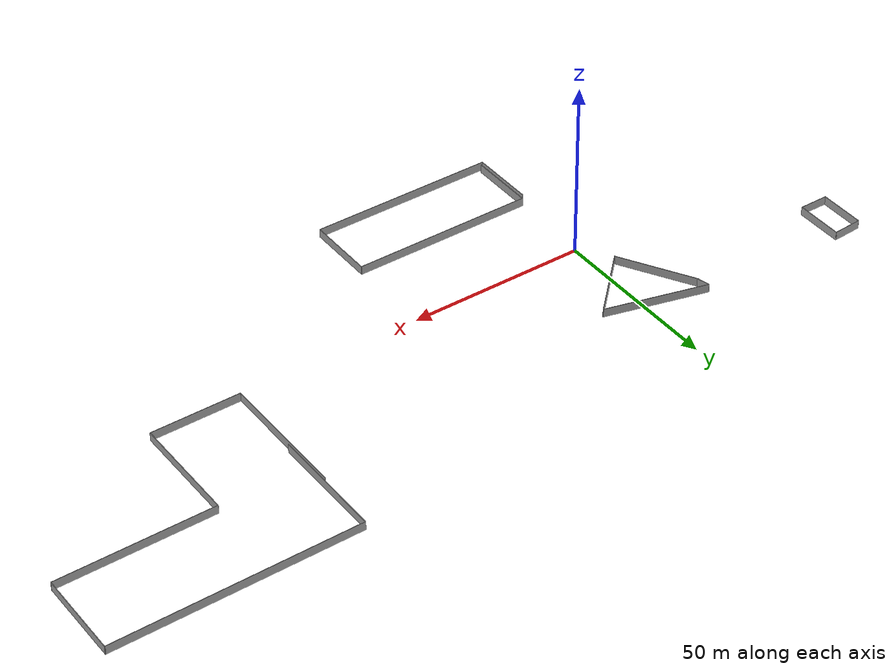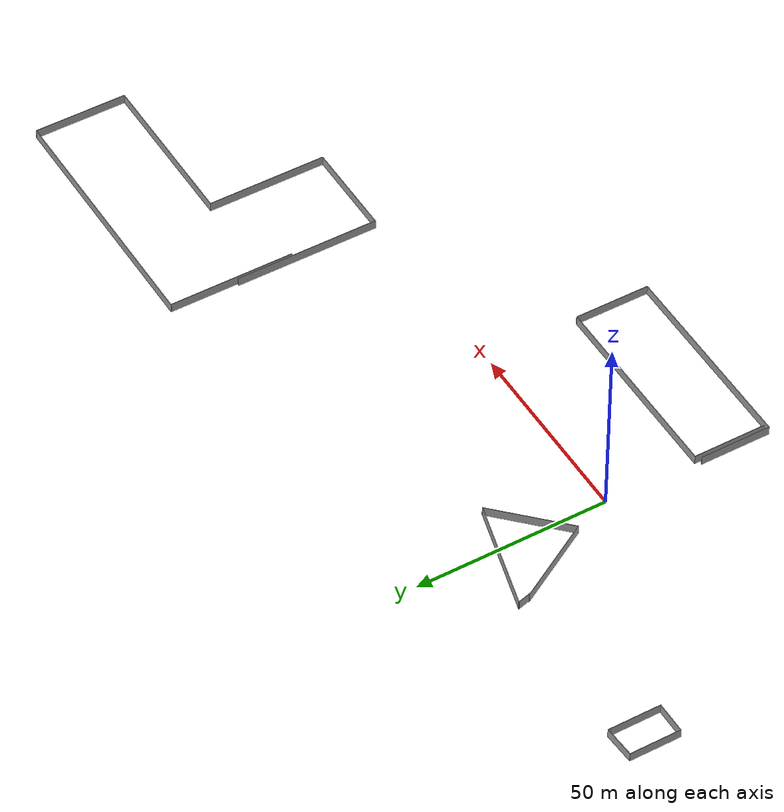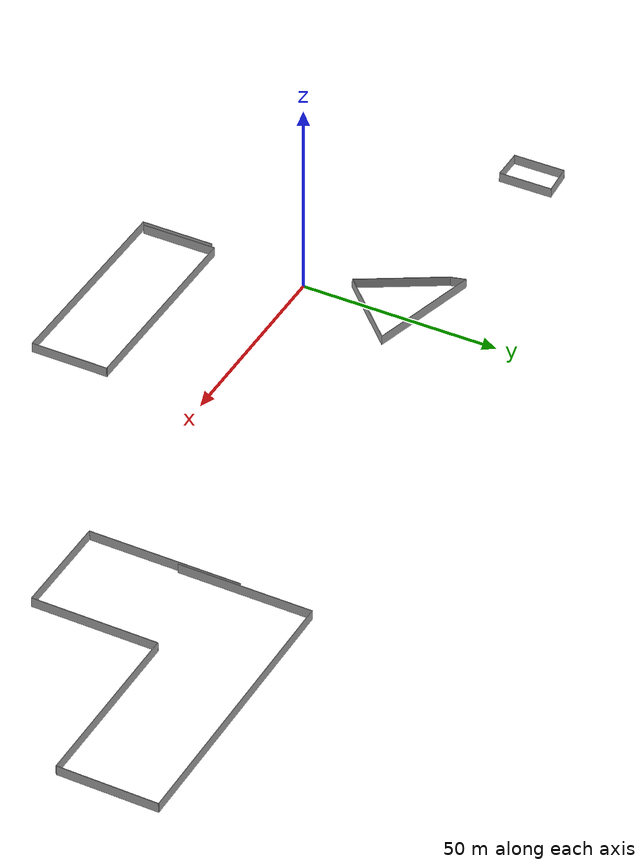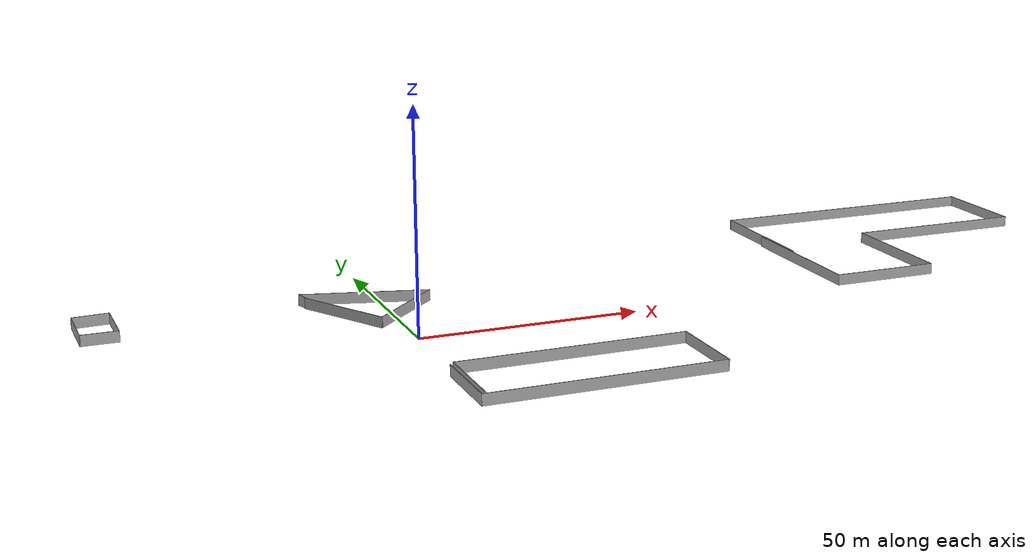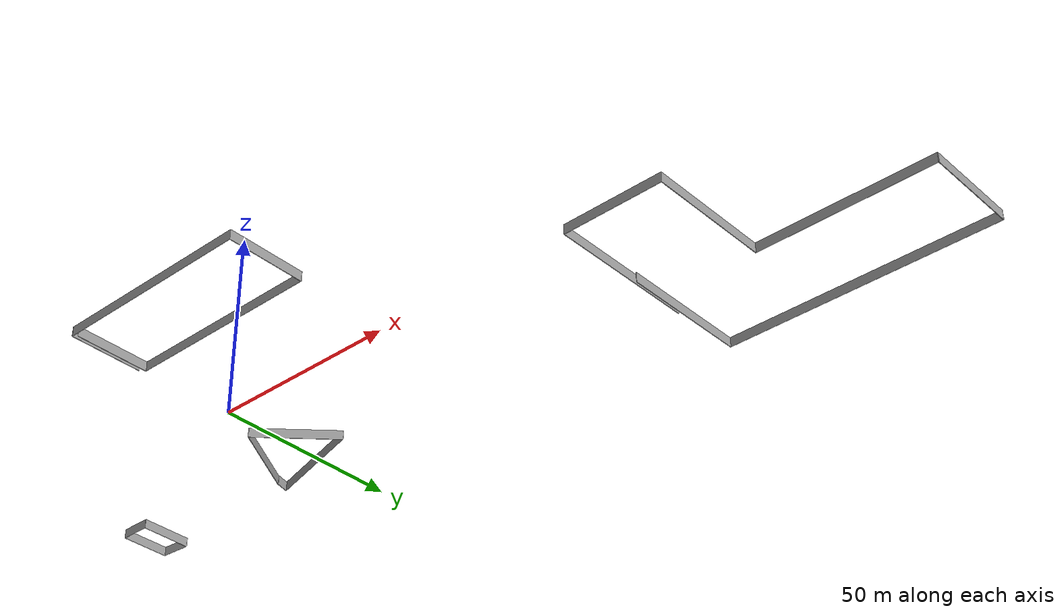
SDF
<?xml version='1.0'?>
<sdf version='1.7'>
  <model name='obstacles'>
    <pose>52.1616 6.40144 0 0 -0 0</pose>
    <link name='Wall_17'>
      <collision name='Wall_17_Collision'>
        <geometry>
          <box>
            <size>37.75 0.15 2.5</size>
          </box>
        </geometry>
        <pose>0 0 1.25 0 -0 0</pose>
      </collision>
      <visual name='Wall_17_Visual'>
        <pose>0 0 1.25 0 -0 0</pose>
        <geometry>
          <box>
            <size>37.75 0.15 2.5</size>
          </box>
        </geometry>
        <material>
          <script>
            <uri>file://media/materials/scripts/gazebo.material</uri>
            <name>Gazebo/Grey</name>
          </script>
          <ambient>1 1 1 1</ambient>
        </material>
        <meta>
          <layer>0</layer>
        </meta>
      </visual>
      <pose>49.9094 13.2584 0 0 -0 -1.5708</pose>
    </link>
    <link name='Wall_18'>
      <collision name='Wall_18_Collision'>
        <geometry>
          <box>
            <size>25.25 0.15 2.5</size>
          </box>
        </geometry>
        <pose>0 0 1.25 0 -0 0</pose>
      </collision>
      <visual name='Wall_18_Visual'>
        <pose>0 0 1.25 0 -0 0</pose>
        <geometry>
          <box>
            <size>25.25 0.15 2.5</size>
          </box>
        </geometry>
        <material>
          <script>
            <uri>file://media/materials/scripts/gazebo.material</uri>
            <name>Gazebo/Grey</name>
          </script>
          <ambient>1 1 1 1</ambient>
        </material>
        <meta>
          <layer>0</layer>
        </meta>
      </visual>
      <pose>62.4594 -5.54164 0 0 -0 0</pose>
    </link>
    <link name='Wall_19'>
      <collision name='Wall_19_Collision'>
        <geometry>
          <box>
            <size>31.25 0.15 2.5</size>
          </box>
        </geometry>
        <pose>0 0 1.25 0 -0 0</pose>
      </collision>
      <visual name='Wall_19_Visual'>
        <pose>0 0 1.25 0 -0 0</pose>
        <geometry>
          <box>
            <size>31.25 0.15 2.5</size>
          </box>
        </geometry>
        <material>
          <script>
            <uri>file://media/materials/scripts/gazebo.material</uri>
            <name>Gazebo/Grey</name>
          </script>
          <ambient>1 1 1 1</ambient>
        </material>
        <meta>
          <layer>0</layer>
        </meta>
      </visual>
      <pose>75.0094 10.0084 0 0 -0 1.5708</pose>
    </link>
    <link name='Wall_20'>
      <collision name='Wall_20_Collision'>
        <geometry>
          <box>
            <size>43.5 0.15 2.5</size>
          </box>
        </geometry>
        <pose>0 0 1.25 0 -0 0</pose>
      </collision>
      <visual name='Wall_20_Visual'>
        <pose>0 0 1.25 0 -0 0</pose>
        <geometry>
          <box>
            <size>43.5 0.15 2.5</size>
          </box>
        </geometry>
        <material>
          <script>
            <uri>file://media/materials/scripts/gazebo.material</uri>
            <name>Gazebo/Grey</name>
          </script>
          <ambient>1 1 1 1</ambient>
        </material>
        <meta>
          <layer>0</layer>
        </meta>
      </visual>
      <pose>96.6844 25.5584 0 0 -0 0</pose>
    </link>
    <link name='Wall_21'>
      <collision name='Wall_21_Collision'>
        <geometry>
          <box>
            <size>24.5 0.15 2.5</size>
          </box>
        </geometry>
        <pose>0 0 1.25 0 -0 0</pose>
      </collision>
      <visual name='Wall_21_Visual'>
        <pose>0 0 1.25 0 -0 0</pose>
        <geometry>
          <box>
            <size>24.5 0.15 2.5</size>
          </box>
        </geometry>
        <material>
          <script>
            <uri>file://media/materials/scripts/gazebo.material</uri>
            <name>Gazebo/Grey</name>
          </script>
          <ambient>1 1 1 1</ambient>
        </material>
        <meta>
          <layer>0</layer>
        </meta>
      </visual>
      <pose>118.359 37.7334 0 0 -0 1.5708</pose>
    </link>
    <link name='Wall_22'>
      <collision name='Wall_22_Collision'>
        <geometry>
          <box>
            <size>68 0.15 2.5</size>
          </box>
        </geometry>
        <pose>0 0 1.25 0 -0 0</pose>
      </collision>
      <visual name='Wall_22_Visual'>
        <pose>0 0 1.25 0 -0 0</pose>
        <geometry>
          <box>
            <size>68 0.15 2.5</size>
          </box>
        </geometry>
        <material>
          <script>
            <uri>file://media/materials/scripts/gazebo.material</uri>
            <name>Gazebo/Grey</name>
          </script>
          <ambient>1 1 1 1</ambient>
        </material>
        <meta>
          <layer>0</layer>
        </meta>
      </visual>
      <pose>84.4344 49.9084 0 0 -0 3.14159</pose>
    </link>
    <link name='Wall_23'>
      <collision name='Wall_23_Collision'>
        <geometry>
          <box>
            <size>33 0.15 2.5</size>
          </box>
        </geometry>
        <pose>0 0 1.25 0 -0 0</pose>
      </collision>
      <visual name='Wall_23_Visual'>
        <pose>0 0 1.25 0 -0 0</pose>
        <geometry>
          <box>
            <size>33 0.15 2.5</size>
          </box>
        </geometry>
        <material>
          <script>
            <uri>file://media/materials/scripts/gazebo.material</uri>
            <name>Gazebo/Grey</name>
          </script>
          <ambient>1 1 1 1</ambient>
        </material>
        <meta>
          <layer>0</layer>
        </meta>
      </visual>
      <pose>50.5094 33.4834 0 0 -0 -1.5708</pose>
    </link>
    <link name='Wall_25'>
      <collision name='Wall_25_Collision'>
        <geometry>
          <box>
            <size>18.5 0.15 2.5</size>
          </box>
        </geometry>
        <pose>0 0 1.25 0 -0 0</pose>
      </collision>
      <visual name='Wall_25_Visual'>
        <pose>0 0 1.25 0 -0 0</pose>
        <geometry>
          <box>
            <size>18.5 0.15 2.5</size>
          </box>
        </geometry>
        <material>
          <script>
            <uri>file://media/materials/scripts/gazebo.material</uri>
            <name>Gazebo/Grey</name>
          </script>
          <ambient>1 1 1 1</ambient>
        </material>
        <meta>
          <layer>0</layer>
        </meta>
      </visual>
      <pose>-53.6089 -40.7334 0 0 -0 -1.5708</pose>
    </link>
    <link name='Wall_26'>
      <collision name='Wall_26_Collision'>
        <geometry>
          <box>
            <size>52.25 0.15 2.5</size>
          </box>
        </geometry>
        <pose>0 0 1.25 0 -0 0</pose>
      </collision>
      <visual name='Wall_26_Visual'>
        <pose>0 0 1.25 0 -0 0</pose>
        <geometry>
          <box>
            <size>52.25 0.15 2.5</size>
          </box>
        </geometry>
        <material>
          <script>
            <uri>file://media/materials/scripts/gazebo.material</uri>
            <name>Gazebo/Grey</name>
          </script>
          <ambient>1 1 1 1</ambient>
        </material>
        <meta>
          <layer>0</layer>
        </meta>
      </visual>
      <pose>-27.5589 -49.9084 0 0 -0 0</pose>
    </link>
    <link name='Wall_27'>
      <collision name='Wall_27_Collision'>
        <geometry>
          <box>
            <size>19.75 0.15 2.5</size>
          </box>
        </geometry>
        <pose>0 0 1.25 0 -0 0</pose>
      </collision>
      <visual name='Wall_27_Visual'>
        <pose>0 0 1.25 0 -0 0</pose>
        <geometry>
          <box>
            <size>19.75 0.15 2.5</size>
          </box>
        </geometry>
        <material>
          <script>
            <uri>file://media/materials/scripts/gazebo.material</uri>
            <name>Gazebo/Grey</name>
          </script>
          <ambient>1 1 1 1</ambient>
        </material>
        <meta>
          <layer>0</layer>
        </meta>
      </visual>
      <pose>-1.50893 -40.1084 0 0 -0 1.5708</pose>
    </link>
    <link name='Wall_28'>
      <collision name='Wall_28_Collision'>
        <geometry>
          <box>
            <size>51.25 0.15 2.5</size>
          </box>
        </geometry>
        <pose>0 0 1.25 0 -0 0</pose>
      </collision>
      <visual name='Wall_28_Visual'>
        <pose>0 0 1.25 0 -0 0</pose>
        <geometry>
          <box>
            <size>51.25 0.15 2.5</size>
          </box>
        </geometry>
        <material>
          <script>
            <uri>file://media/materials/scripts/gazebo.material</uri>
            <name>Gazebo/Grey</name>
          </script>
          <ambient>1 1 1 1</ambient>
        </material>
        <meta>
          <layer>0</layer>
        </meta>
      </visual>
      <pose>-27.0589 -30.3084 0 0 -0 3.14159</pose>
    </link>
    <link name='Wall_29'>
      <collision name='Wall_29_Collision'>
        <geometry>
          <box>
            <size>19 0.15 2.5</size>
          </box>
        </geometry>
        <pose>0 0 1.25 0 -0 0</pose>
      </collision>
      <visual name='Wall_29_Visual'>
        <pose>0 0 1.25 0 -0 0</pose>
        <geometry>
          <box>
            <size>19 0.15 2.5</size>
          </box>
        </geometry>
        <material>
          <script>
            <uri>file://media/materials/scripts/gazebo.material</uri>
            <name>Gazebo/Grey</name>
          </script>
          <ambient>1 1 1 1</ambient>
        </material>
        <meta>
          <layer>0</layer>
        </meta>
      </visual>
      <pose>-52.6089 -39.7334 0 0 -0 -1.5708</pose>
    </link>
    <link name='Wall_31'>
      <collision name='Wall_31_Collision'>
        <geometry>
          <box>
            <size>13.25 0.15 2.5</size>
          </box>
        </geometry>
        <pose>0 0 1.25 0 -0 0</pose>
      </collision>
      <visual name='Wall_31_Visual'>
        <pose>0 0 1.25 0 -0 0</pose>
        <geometry>
          <box>
            <size>13.25 0.15 2.5</size>
          </box>
        </geometry>
        <material>
          <script>
            <uri>file://media/materials/scripts/gazebo.material</uri>
            <name>Gazebo/Grey</name>
          </script>
          <ambient>1 1 1 1</ambient>
        </material>
        <meta>
          <layer>0</layer>
        </meta>
      </visual>
      <pose>-118.355 22.4969 0 0 -0 -1.5708</pose>
    </link>
    <link name='Wall_32'>
      <collision name='Wall_32_Collision'>
        <geometry>
          <box>
            <size>8.25 0.15 2.5</size>
          </box>
        </geometry>
        <pose>0 0 1.25 0 -0 0</pose>
      </collision>
      <visual name='Wall_32_Visual'>
        <pose>0 0 1.25 0 -0 0</pose>
        <geometry>
          <box>
            <size>8.25 0.15 2.5</size>
          </box>
        </geometry>
        <material>
          <script>
            <uri>file://media/materials/scripts/gazebo.material</uri>
            <name>Gazebo/Grey</name>
          </script>
          <ambient>1 1 1 1</ambient>
        </material>
        <meta>
          <layer>0</layer>
        </meta>
      </visual>
      <pose>-114.305 15.9469 0 0 -0 0</pose>
    </link>
    <link name='Wall_33'>
      <collision name='Wall_33_Collision'>
        <geometry>
          <box>
            <size>13.75 0.15 2.5</size>
          </box>
        </geometry>
        <pose>0 0 1.25 0 -0 0</pose>
      </collision>
      <visual name='Wall_33_Visual'>
        <pose>0 0 1.25 0 -0 0</pose>
        <geometry>
          <box>
            <size>13.75 0.15 2.5</size>
          </box>
        </geometry>
        <material>
          <script>
            <uri>file://media/materials/scripts/gazebo.material</uri>
            <name>Gazebo/Grey</name>
          </script>
          <ambient>1 1 1 1</ambient>
        </material>
        <meta>
          <layer>0</layer>
        </meta>
      </visual>
      <pose>-110.255 22.7469 0 0 -0 1.5708</pose>
    </link>
    <link name='Wall_34'>
      <collision name='Wall_34_Collision'>
        <geometry>
          <box>
            <size>8.26542 0.15 2.5</size>
          </box>
        </geometry>
        <pose>0 0 1.25 0 -0 0</pose>
      </collision>
      <visual name='Wall_34_Visual'>
        <pose>0 0 1.25 0 -0 0</pose>
        <geometry>
          <box>
            <size>8.26542 0.15 2.5</size>
          </box>
        </geometry>
        <material>
          <script>
            <uri>file://media/materials/scripts/gazebo.material</uri>
            <name>Gazebo/Grey</name>
          </script>
          <ambient>1 1 1 1</ambient>
        </material>
        <meta>
          <layer>0</layer>
        </meta>
      </visual>
      <pose>-114.305 29.2969 0 0 -0 -3.07994</pose>
    </link>
    <link name='Wall_36'>
      <collision name='Wall_36_Collision'>
        <geometry>
          <box>
            <size>23.5 0.15 2.5</size>
          </box>
        </geometry>
        <pose>0 0 1.25 0 -0 0</pose>
      </collision>
      <visual name='Wall_36_Visual'>
        <pose>0 0 1.25 0 -0 0</pose>
        <geometry>
          <box>
            <size>23.5 0.15 2.5</size>
          </box>
        </geometry>
        <material>
          <script>
            <uri>file://media/materials/scripts/gazebo.material</uri>
            <name>Gazebo/Grey</name>
          </script>
          <ambient>1 1 1 1</ambient>
        </material>
        <meta>
          <layer>0</layer>
        </meta>
      </visual>
      <pose>-62.8286 14.0425 0 0 -0 -1.0472</pose>
    </link>
    <link name='Wall_37'>
      <collision name='Wall_37_Collision'>
        <geometry>
          <box>
            <size>22.5 0.15 2.5</size>
          </box>
        </geometry>
        <pose>0 0 1.25 0 -0 0</pose>
      </collision>
      <visual name='Wall_37_Visual'>
        <pose>0 0 1.25 0 -0 0</pose>
        <geometry>
          <box>
            <size>22.5 0.15 2.5</size>
          </box>
        </geometry>
        <material>
          <script>
            <uri>file://media/materials/scripts/gazebo.material</uri>
            <name>Gazebo/Grey</name>
          </script>
          <ambient>1 1 1 1</ambient>
        </material>
        <meta>
          <layer>0</layer>
        </meta>
      </visual>
      <pose>-49.0892 11.8336 0 0 -0 0.785398</pose>
    </link>
    <link name='Wall_38'>
      <collision name='Wall_38_Collision'>
        <geometry>
          <box>
            <size>29.25 0.15 2.5</size>
          </box>
        </geometry>
        <pose>0 0 1.25 0 -0 0</pose>
      </collision>
      <visual name='Wall_38_Visual'>
        <pose>0 0 1.25 0 -0 0</pose>
        <geometry>
          <box>
            <size>29.25 0.15 2.5</size>
          </box>
        </geometry>
        <material>
          <script>
            <uri>file://media/materials/scripts/gazebo.material</uri>
            <name>Gazebo/Grey</name>
          </script>
          <ambient>1 1 1 1</ambient>
        </material>
        <meta>
          <layer>0</layer>
        </meta>
      </visual>
      <pose>-55.2415 23.5013 0 0 -0 2.87979</pose>
    </link>
    <link name='Wall_39'>
      <collision name='Wall_39_Collision'>
        <geometry>
          <box>
            <size>3.75 0.15 2.5</size>
          </box>
        </geometry>
        <pose>0 0 1.25 0 -0 0</pose>
      </collision>
      <visual name='Wall_39_Visual'>
        <pose>0 0 1.25 0 -0 0</pose>
        <geometry>
          <box>
            <size>3.75 0.15 2.5</size>
          </box>
        </geometry>
        <material>
          <script>
            <uri>file://media/materials/scripts/gazebo.material</uri>
            <name>Gazebo/Grey</name>
          </script>
          <ambient>1 1 1 1</ambient>
        </material>
        <meta>
          <layer>0</layer>
        </meta>
      </visual>
      <pose>-68.8299 25.5284 0 0 -0 -1.309</pose>
    </link>
    <static>1</static>
  </model>
</sdf>
